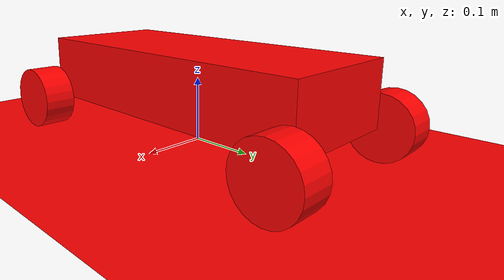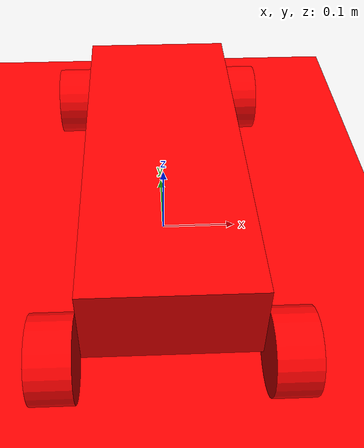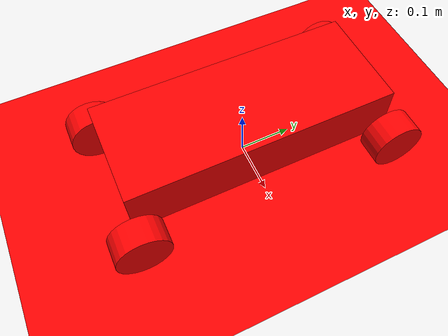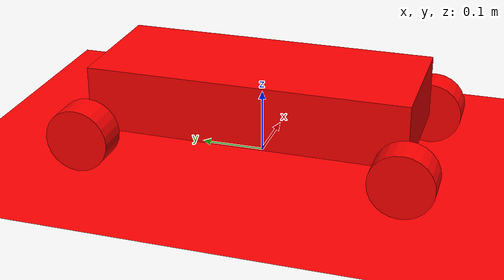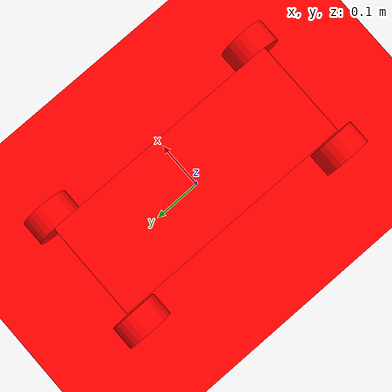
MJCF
<mujoco>
    <size njmax="3000" nconmax="1000" />
    <option timestep="0.004" />
    <default>
        <geom condim="6" density="5" rgba="1 0 0 1" size=".05" type="sphere" />
        <joint damping=".001" />
        <motor ctrlrange="-1 1" ctrllimited="true" forcerange="-.02 .02" forcelimited="true" />
        <site size="0.032" type="sphere" />
    </default>
    <worldbody>
        <geom name="floor" size="5 5 0.1" type="plane" condim="6" />
        <body name="robot" pos="0 0 .1">
            <site name="robot" pos="0 0 0" />
            <camera name="vision" pos="0 0.1 .2" xyaxes="-1 0 0 0 -.4 1" />
            <joint type="free" name="robot" damping="0" />
            <geom name="robot" type="box" size=".1 .25 .05" mass="0.5" />
            <body name="left" pos="-.1 .25 -.05">
                <joint type="hinge" name="left" axis="1 0 0" />
                <geom type="cylinder" name="left" fromto="-.055 0 0 -0.005 0 0" />
            </body>
            <body name="right" pos=".1 .25 -.05">
                <joint type="hinge" name="right" axis="1 0 0" />
                <geom type="cylinder" name="right" fromto="0.005 0 0 .055 0 0" />
            </body>
            <body name="front_left" pos="-.1 -.25 -.05">
                <joint type="hinge" name="front_left" axis="1 0 0" />
                <geom type="cylinder" name="front_left" fromto="-.055 0 0 -0.005 0 0" />
            </body>
            <body name="front_right" pos=".1 -.25 -.05">
                <joint type="hinge" name="front_right" axis="1 0 0" />
                <geom type="cylinder" name="front_right" fromto="0.005 0 0 .055 0 0" />
            </body>
        </body>
    </worldbody>
    <sensor>

        <!-- Used for observation -->
        <accelerometer site="robot" name="accelerometer" />
        <velocimeter site="robot" name="velocimeter" />
        <gyro site="robot" name="gyro" />
        <magnetometer site="robot" name="magnetometer" />

        <!-- Used for intrinsic constraints -->
        <subtreecom body="robot" name="subtreecom" />
        <subtreelinvel body="robot" name="subtreelinvel" />
        <subtreeangmom body="robot" name="subtreeangmom" />
    </sensor>
    <actuator>
        <motor gear="1" jointinparent="left" name="left" />
        <motor gear="1" jointinparent="right" name="right" />
    </actuator>
</mujoco>
